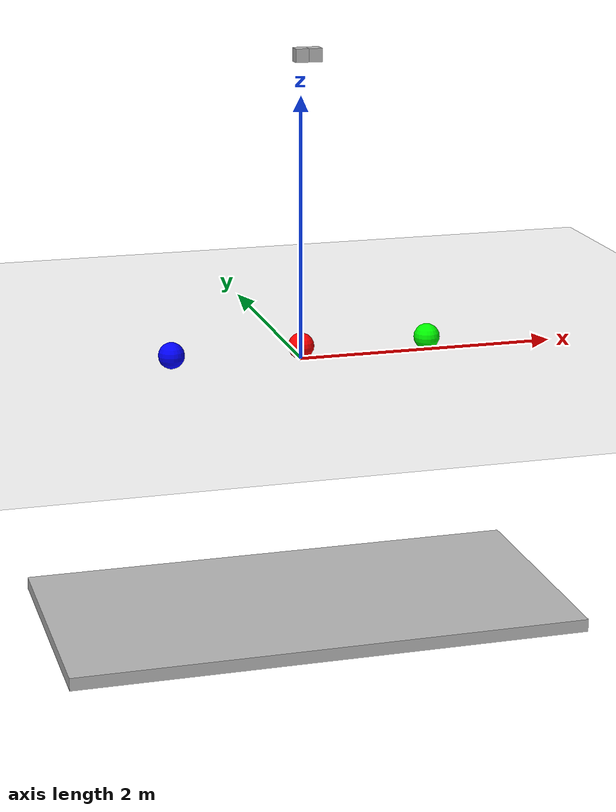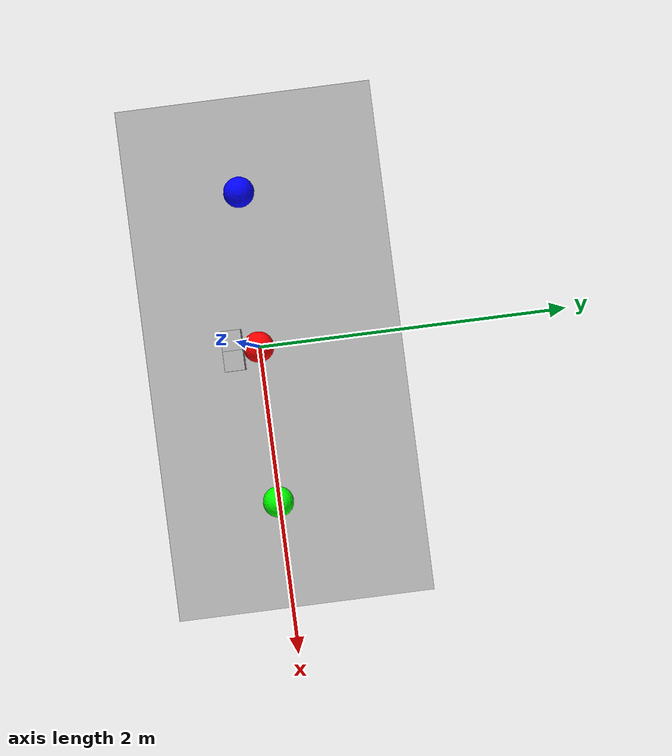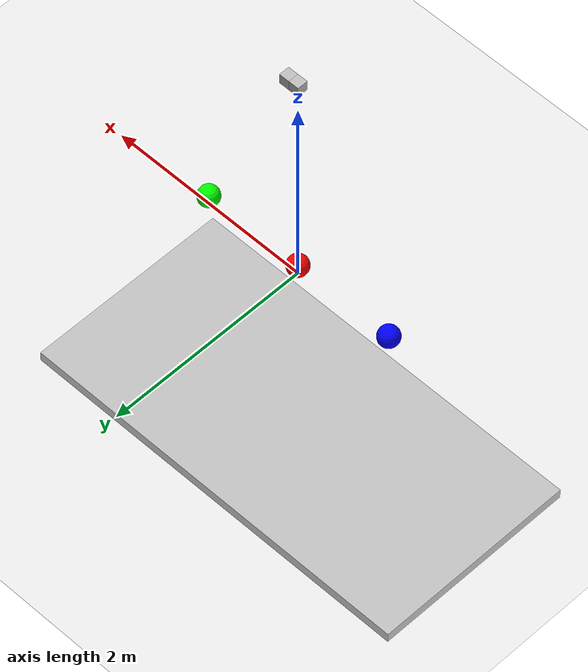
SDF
<?xml version="1.0" ?>

<!-- SDF language version -->
<sdf version="1.7">
  <!-- World -->
  <world name="Environment v2.0">

    <!-- Add sun to world -->
    <include>
      <uri>model://sun</uri>
    </include>
    <!-- Add ground plane to world -->
    <include>
      <uri>model://ground_plane</uri>
    </include>

    <!-- Add a rectangle to serve as a table to the world -->
    <model name="table">
      <pose>0 0 -1 0 0 0</pose>
      <link name="table_link">
        <pose>0 0 -1 0 0 0</pose>
        <collision name="collision">
          <geometry>
            <box>
              <size>4 2 0.1</size>
            </box>
          </geometry>
        </collision>
        <visual name="visual">
          <geometry>
            <box>
              <size>4 2 0.1</size>
            </box>
          </geometry>
        </visual>
      </link>
    </model>

    <!-- Add a red ball to the world -->
    <model name="red_ball">
      <pose>0 0 0.1 0 0 0</pose>
      <link name="link">
        <pose>0 0 0 0 0 0</pose>
        <collision name="collision">
          <geometry>
            <sphere>
              <radius>0.1</radius>
            </sphere>
          </geometry>
        </collision>
        <visual name="visual">
          <geometry>
            <sphere>
              <radius>0.1</radius>
            </sphere>
          </geometry>
          <material>
            <ambient>1 0 0 1</ambient>
            <diffuse>1 0 0 1</diffuse>
            <specular>0 0 0 1</specular>
          </material>
        </visual>
      </link>
    </model>

    <!-- Add a green ball to the world -->
    <model name="green_ball">
      <pose>1 0 0.1 0 0 0</pose>
      <link name="link">
        <pose>0 0 0 0 0 0</pose>
        <collision name="collision">
          <geometry>
            <sphere>
              <radius>0.1</radius>
            </sphere>
          </geometry>
        </collision>
        <visual name="visual">
          <geometry>
            <sphere>
              <radius>0.1</radius>
            </sphere>
          </geometry>
          <material>
            <ambient>0 1 0 1</ambient>
            <diffuse>0 1 0 1</diffuse>
            <specular>0 0 0 1</specular>
          </material>
        </visual>
      </link>
    </model>

    <!-- Add a blue ball to the world -->
    <model name="blue_ball">
      <pose>-1 0 0.1 0 0 0</pose>
      <link name="link">
        <pose>0 0 0 0 0 0</pose>
        <collision name="collision">
          <geometry>
            <sphere>
              <radius>0.1</radius>
            </sphere>
          </geometry>
        </collision>
        <visual name="visual">
          <geometry>
            <sphere>
              <radius>0.1</radius>
            </sphere>
          </geometry>
          <material>
            <ambient>0 0 1 1</ambient>
            <diffuse>0 0 1 1</diffuse>
            <specular>0 0 0 1</specular>
          </material>
        </visual>
      </link>
    </model>

       <!-- Add a stereo camera with ROS support -->
       <!-- And because it's not possible with stereo, i'll do it the supid way -->
           <!-- Add a  camera with ROS support -->
    <model name='camera_left'>
      <pose>-0.0 0.0 2.3 3.13 1.57 -1.58</pose>
      <link name='cam_l_link'>
        <!-- Remove gravity from object so camera stays in place-->
        <gravity>0</gravity>
        <visual name='visual'>
          <geometry>
            <box>
              <size>0.1 0.1 0.1</size>
            </box>
          </geometry>
        </visual>
        <sensor name='camera' type='camera'>
          <camera>
            <horizontal_fov>1.047</horizontal_fov>
            <image>
              <width>320</width>
              <height>240</height>
            </image>
            <clip>
              <near>0.1</near>
              <far>100</far>
            </clip>
            <lens>
            </lens>
          </camera>
          <always_on>1</always_on>
          <update_rate>30</update_rate>
          <visualize>1</visualize>
          <!-- ROS plugin -->
          <plugin name='camera_plugin' filename='libgazebo_ros_camera.so'>
            <ros>
              <namespace>stereo_left</namespace>
              <remapping>image_raw:=custom_img</remapping>
              <remapping>camera_info:=custom_info</remapping>
            </ros>
            <camera_name>custom_rgb</camera_name>
            <frame_name>camera_rgb_frame</frame_name>
            <hack_baseline>0.07</hack_baseline>
          </plugin>
        </sensor>
      </link>
    </model>

  <!-- Add a  camera with ROS support -->
  <model name='camera_right'>
    <pose>0.1 0.0 2.3 3.13 1.57 -1.58</pose>
    <link name='cam_r_link'>
      <!-- Remove gravity from object so camera stays in place-->
      <gravity>0</gravity>
      <visual name='visual'>
        <geometry>
          <box>
            <size>0.1 0.1 0.1</size>
          </box>
        </geometry>
      </visual>
      <sensor name='camera' type='camera'>
        <camera>
          <horizontal_fov>1.047</horizontal_fov>
          <image>
            <width>320</width>
            <height>240</height>
          </image>
          <clip>
            <near>0.1</near>
            <far>100</far>
          </clip>
          <lens>
          </lens>
        </camera>
        <always_on>1</always_on>
        <update_rate>30</update_rate>
        <visualize>1</visualize>
        <!-- ROS plugin -->
        <plugin name='camera_plugin' filename='libgazebo_ros_camera.so'>
          <ros>
            <namespace>stereo_right</namespace>
            <remapping>image_raw:=custom_img</remapping>
            <remapping>camera_info:=custom_info</remapping>
          </ros>
          <camera_name>custom_rgb</camera_name>
          <frame_name>camera_rgb_frame</frame_name>
          <hack_baseline>0.07</hack_baseline>
        </plugin>
      </sensor>
    </link>
  </model>

  </world>
</sdf>
